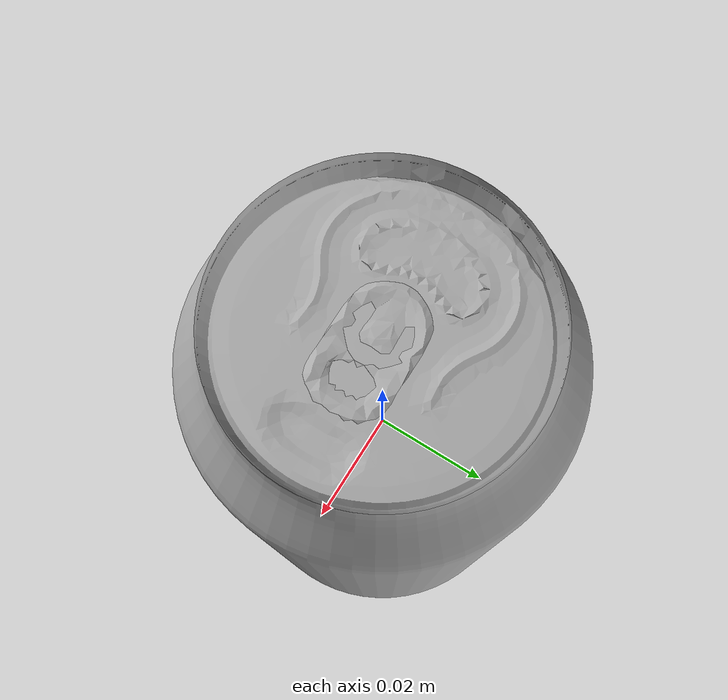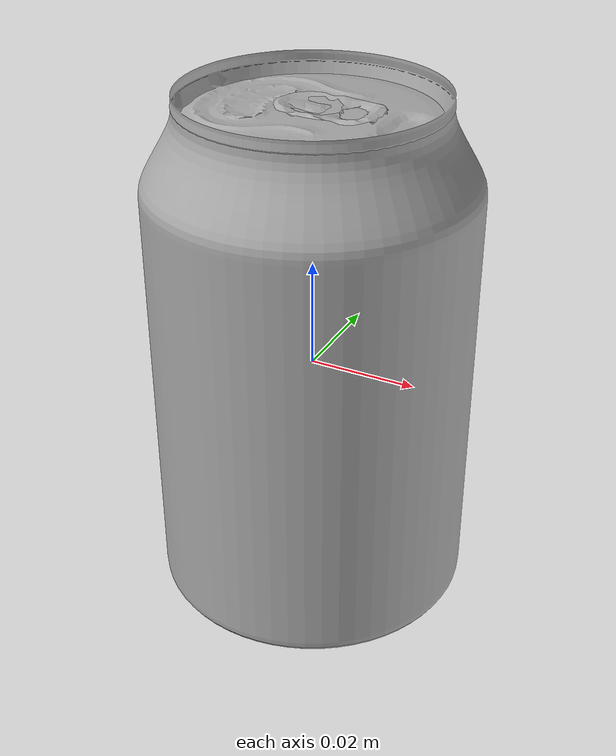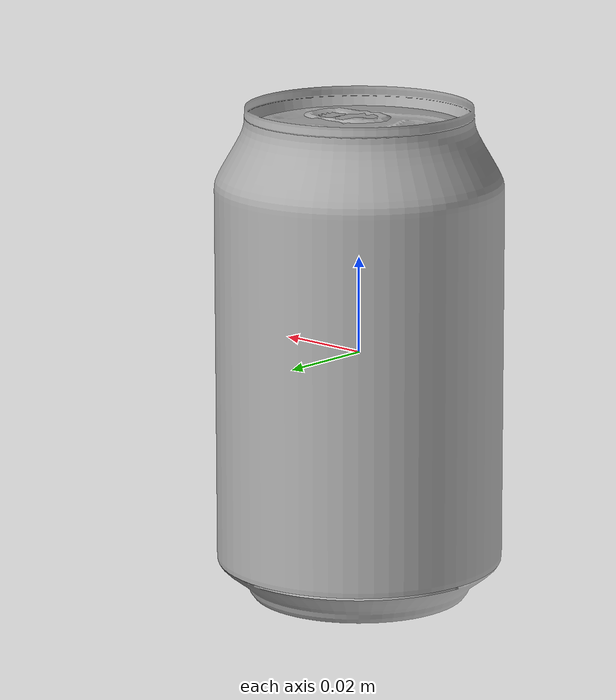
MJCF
<?xml version="1.0" ?>
<mujoco model="coke_can">
	<compiler meshdir="coke_can/meshes" texturedir="coke_can/textures" angle="radian" autolimits="true" balanceinertia="true" boundmass="0.000001" boundinertia="0.000001"/>
	<default>
		<default class="visual">
			<geom contype="0" conaffinity="0"/>
		</default>
		<default class="collision">
			<geom rgba="1.0 0.0 0.0 0.0"/>
		</default>
	</default>
	<asset>
		<mesh name="CokeCanSnapLids" file="stl/CokeCanSnapLids.stl" scale="1.0 1.0 1.0"/>
		<mesh name="CokeCanSnapLids_001" file="stl/CokeCanSnapLids_001.stl" scale="1.0 1.0 1.0"/>
		<mesh name="CokeCanSnapLids_002" file="stl/CokeCanSnapLids_002.stl" scale="1.0 1.0 1.0"/>
		<mesh name="CokeCanSnapLids_003" file="stl/CokeCanSnapLids_003.stl" scale="1.0 1.0 1.0"/>
		<mesh name="CokeCanSnapLids_004" file="stl/CokeCanSnapLids_004.stl" scale="1.0 1.0 1.0"/>
		<mesh name="CokeCanSnapLids_005" file="stl/CokeCanSnapLids_005.stl" scale="1.0 1.0 1.0"/>
		<mesh name="CokeCanSnapLids_006" file="stl/CokeCanSnapLids_006.stl" scale="1.0 1.0 1.0"/>
		<mesh name="CokeCanSnapLids_007" file="stl/CokeCanSnapLids_007.stl" scale="1.0 1.0 1.0"/>
		<mesh name="CokeCanSnapLids_008" file="stl/CokeCanSnapLids_008.stl" scale="1.0 1.0 1.0"/>
		<mesh name="CokeCanSnapLids_009" file="stl/CokeCanSnapLids_009.stl" scale="1.0 1.0 1.0"/>
		<mesh name="CokeCanSnapLids_010" file="stl/CokeCanSnapLids_010.stl" scale="1.0 1.0 1.0"/>
		<mesh name="CokeCanSnapLids_011" file="stl/CokeCanSnapLids_011.stl" scale="1.0 1.0 1.0"/>
		<mesh name="CokeCanSnapLids_012" file="stl/CokeCanSnapLids_012.stl" scale="1.0 1.0 1.0"/>
		<mesh name="CokeCanSnapLids_013" file="stl/CokeCanSnapLids_013.stl" scale="1.0 1.0 1.0"/>
		<mesh name="CokeCanSnapLids_014" file="stl/CokeCanSnapLids_014.stl" scale="1.0 1.0 1.0"/>
		<mesh name="CokeCanSnapLids_015" file="stl/CokeCanSnapLids_015.stl" scale="1.0 1.0 1.0"/>
		<mesh name="CokeCanSnapLids_016" file="stl/CokeCanSnapLids_016.stl" scale="1.0 1.0 1.0"/>
		<mesh name="CokeCanSnapLids_017" file="stl/CokeCanSnapLids_017.stl" scale="1.0 1.0 1.0"/>
		<mesh name="CokeCanSnapLids_018" file="stl/CokeCanSnapLids_018.stl" scale="1.0 1.0 1.0"/>
		<mesh name="CokeCanSnapLids_019" file="stl/CokeCanSnapLids_019.stl" scale="1.0 1.0 1.0"/>
		<mesh name="CokeCanSnapLids_020" file="stl/CokeCanSnapLids_020.stl" scale="1.0 1.0 1.0"/>
		<mesh name="CokeCanSnapLids_021" file="stl/CokeCanSnapLids_021.stl" scale="1.0 1.0 1.0"/>
		<mesh name="CokeCanSnapLids_022" file="stl/CokeCanSnapLids_022.stl" scale="1.0 1.0 1.0"/>
		<mesh name="CokeCanSnapLids_023" file="stl/CokeCanSnapLids_023.stl" scale="1.0 1.0 1.0"/>
		<mesh name="CokeCanSnapLids_024" file="stl/CokeCanSnapLids_024.stl" scale="1.0 1.0 1.0"/>
		<mesh name="CokeCanSnapLids_025" file="stl/CokeCanSnapLids_025.stl" scale="1.0 1.0 1.0"/>
		<mesh name="CokeCanSnapLids_026" file="stl/CokeCanSnapLids_026.stl" scale="1.0 1.0 1.0"/>
		<mesh name="CokeCanSnapLids_027" file="stl/CokeCanSnapLids_027.stl" scale="1.0 1.0 1.0"/>
		<mesh name="CokeCanSnapLids_028" file="stl/CokeCanSnapLids_028.stl" scale="1.0 1.0 1.0"/>
		<mesh name="CokeCanSnapLids_029" file="stl/CokeCanSnapLids_029.stl" scale="1.0 1.0 1.0"/>
		<mesh name="CokeCanSnapLids_030" file="stl/CokeCanSnapLids_030.stl" scale="1.0 1.0 1.0"/>
		<mesh name="CokeCanSnapLids_031" file="stl/CokeCanSnapLids_031.stl" scale="1.0 1.0 1.0"/>
		<mesh name="CokeCanSnapLids_032" file="stl/CokeCanSnapLids_032.stl" scale="1.0 1.0 1.0"/>
		<mesh name="CokeCanSnapLids_033" file="stl/CokeCanSnapLids_033.stl" scale="1.0 1.0 1.0"/>
		<mesh name="CokeCanSnapLids_034" file="stl/CokeCanSnapLids_034.stl" scale="1.0 1.0 1.0"/>
		<mesh name="CokeCanBottom" file="stl/CokeCanBottom.stl" scale="1.0 1.0 1.0"/>
		<mesh name="CokeCanBottom_001" file="stl/CokeCanBottom_001.stl" scale="1.0 1.0 1.0"/>
		<mesh name="CokeCanBottom_002" file="stl/CokeCanBottom_002.stl" scale="1.0 1.0 1.0"/>
		<mesh name="CokeCanBottom_003" file="stl/CokeCanBottom_003.stl" scale="1.0 1.0 1.0"/>
		<mesh name="CokeCanBottom_004" file="stl/CokeCanBottom_004.stl" scale="1.0 1.0 1.0"/>
		<mesh name="CokeCanBottom_005" file="stl/CokeCanBottom_005.stl" scale="1.0 1.0 1.0"/>
		<mesh name="CokeCanBottom_006" file="stl/CokeCanBottom_006.stl" scale="1.0 1.0 1.0"/>
		<mesh name="CokeCanBottom_007" file="stl/CokeCanBottom_007.stl" scale="1.0 1.0 1.0"/>
		<mesh name="CokeCanBottom_008" file="stl/CokeCanBottom_008.stl" scale="1.0 1.0 1.0"/>
		<mesh name="CokeCanBottom_009" file="stl/CokeCanBottom_009.stl" scale="1.0 1.0 1.0"/>
		<mesh name="CokeCanBottom_010" file="stl/CokeCanBottom_010.stl" scale="1.0 1.0 1.0"/>
		<mesh name="CokeCanBottom_011" file="stl/CokeCanBottom_011.stl" scale="1.0 1.0 1.0"/>
		<mesh name="CokeCanBottom_012" file="stl/CokeCanBottom_012.stl" scale="1.0 1.0 1.0"/>
		<mesh name="CokeCanBottom_013" file="stl/CokeCanBottom_013.stl" scale="1.0 1.0 1.0"/>
		<mesh name="CokeCanBottom_014" file="stl/CokeCanBottom_014.stl" scale="1.0 1.0 1.0"/>
		<mesh name="CokeCanBottom_015" file="stl/CokeCanBottom_015.stl" scale="1.0 1.0 1.0"/>
		<mesh name="CokeCanBottom_016" file="stl/CokeCanBottom_016.stl" scale="1.0 1.0 1.0"/>
		<mesh name="CokeCanBottom_017" file="stl/CokeCanBottom_017.stl" scale="1.0 1.0 1.0"/>
		<mesh name="CokeCanBottom_018" file="stl/CokeCanBottom_018.stl" scale="1.0 1.0 1.0"/>
		<mesh name="CokeCanBottom_019" file="stl/CokeCanBottom_019.stl" scale="1.0 1.0 1.0"/>
		<mesh name="CokeCanBottom_020" file="stl/CokeCanBottom_020.stl" scale="1.0 1.0 1.0"/>
		<mesh name="CokeCanBottom_021" file="stl/CokeCanBottom_021.stl" scale="1.0 1.0 1.0"/>
		<mesh name="CokeCanBottom_022" file="stl/CokeCanBottom_022.stl" scale="1.0 1.0 1.0"/>
		<mesh name="CokeCanBottom_023" file="stl/CokeCanBottom_023.stl" scale="1.0 1.0 1.0"/>
		<mesh name="CokeCanBottom_024" file="stl/CokeCanBottom_024.stl" scale="1.0 1.0 1.0"/>
		<mesh name="CokeCanBottom_025" file="stl/CokeCanBottom_025.stl" scale="1.0 1.0 1.0"/>
		<mesh name="CokeCanBottom_026" file="stl/CokeCanBottom_026.stl" scale="1.0 1.0 1.0"/>
		<mesh name="CokeCanBottom_027" file="stl/CokeCanBottom_027.stl" scale="1.0 1.0 1.0"/>
		<mesh name="CokeCanBottom_028" file="stl/CokeCanBottom_028.stl" scale="1.0 1.0 1.0"/>
		<mesh name="CokeCanBottom_029" file="stl/CokeCanBottom_029.stl" scale="1.0 1.0 1.0"/>
		<mesh name="CokeCanBottom_030" file="stl/CokeCanBottom_030.stl" scale="1.0 1.0 1.0"/>
		<mesh name="CokeCanBottom_031" file="stl/CokeCanBottom_031.stl" scale="1.0 1.0 1.0"/>
		<mesh name="CokeCanBottom_032" file="stl/CokeCanBottom_032.stl" scale="1.0 1.0 1.0"/>
		<mesh name="CokeCanBottom_033" file="stl/CokeCanBottom_033.stl" scale="1.0 1.0 1.0"/>
		<mesh name="CokeCanBottom_034" file="stl/CokeCanBottom_034.stl" scale="1.0 1.0 1.0"/>
		<mesh name="CokeCanBottom_035" file="stl/CokeCanBottom_035.stl" scale="1.0 1.0 1.0"/>
		<mesh name="CokeCanBottom_036" file="stl/CokeCanBottom_036.stl" scale="1.0 1.0 1.0"/>
		<mesh name="CokeCanBottom_037" file="stl/CokeCanBottom_037.stl" scale="1.0 1.0 1.0"/>
		<mesh name="CokeCanBottom_038" file="stl/CokeCanBottom_038.stl" scale="1.0 1.0 1.0"/>
		<mesh name="CokeCanBottom_039" file="stl/CokeCanBottom_039.stl" scale="1.0 1.0 1.0"/>
		<mesh name="CokeCanBottom_040" file="stl/CokeCanBottom_040.stl" scale="1.0 1.0 1.0"/>
		<mesh name="CokeCanBottom_041" file="stl/CokeCanBottom_041.stl" scale="1.0 1.0 1.0"/>
		<mesh name="CokeCanBottom_042" file="stl/CokeCanBottom_042.stl" scale="1.0 1.0 1.0"/>
		<mesh name="CokeCanBottom_043" file="stl/CokeCanBottom_043.stl" scale="1.0 1.0 1.0"/>
		<mesh name="CokeCanBottom_044" file="stl/CokeCanBottom_044.stl" scale="1.0 1.0 1.0"/>
		<mesh name="CokeCanBottom_045" file="stl/CokeCanBottom_045.stl" scale="1.0 1.0 1.0"/>
		<mesh name="CokeCanBottom_046" file="stl/CokeCanBottom_046.stl" scale="1.0 1.0 1.0"/>
		<mesh name="CokeCanBottom_047" file="stl/CokeCanBottom_047.stl" scale="1.0 1.0 1.0"/>
		<mesh name="CokeCanBottom_048" file="stl/CokeCanBottom_048.stl" scale="1.0 1.0 1.0"/>
		<mesh name="CokeCanBottom_049" file="stl/CokeCanBottom_049.stl" scale="1.0 1.0 1.0"/>
		<mesh name="CokeCanBottom_050" file="stl/CokeCanBottom_050.stl" scale="1.0 1.0 1.0"/>
		<mesh name="CokeCanBottom_051" file="stl/CokeCanBottom_051.stl" scale="1.0 1.0 1.0"/>
		<mesh name="CokeCanBottom_052" file="stl/CokeCanBottom_052.stl" scale="1.0 1.0 1.0"/>
		<mesh name="CokeCanBottom_053" file="stl/CokeCanBottom_053.stl" scale="1.0 1.0 1.0"/>
		<mesh name="CokeCanBottom_054" file="stl/CokeCanBottom_054.stl" scale="1.0 1.0 1.0"/>
		<mesh name="CokeCanBottom_055" file="stl/CokeCanBottom_055.stl" scale="1.0 1.0 1.0"/>
		<mesh name="CokeCanBottom_056" file="stl/CokeCanBottom_056.stl" scale="1.0 1.0 1.0"/>
		<mesh name="CokeCanBottom_057" file="stl/CokeCanBottom_057.stl" scale="1.0 1.0 1.0"/>
		<mesh name="CokeCanBottom_058" file="stl/CokeCanBottom_058.stl" scale="1.0 1.0 1.0"/>
		<mesh name="CokeCanBottom_059" file="stl/CokeCanBottom_059.stl" scale="1.0 1.0 1.0"/>
		<mesh name="CokeCanBottom_060" file="stl/CokeCanBottom_060.stl" scale="1.0 1.0 1.0"/>
		<mesh name="CokeCanBottom_061" file="stl/CokeCanBottom_061.stl" scale="1.0 1.0 1.0"/>
		<mesh name="CokeCanBottom_062" file="stl/CokeCanBottom_062.stl" scale="1.0 1.0 1.0"/>
		<mesh name="CokeCanBottom_063" file="stl/CokeCanBottom_063.stl" scale="1.0 1.0 1.0"/>
		<mesh name="CokeCanBottom_064" file="stl/CokeCanBottom_064.stl" scale="1.0 1.0 1.0"/>
		<mesh name="CokeCanBottom_065" file="stl/CokeCanBottom_065.stl" scale="1.0 1.0 1.0"/>
		<mesh name="CokeCanBottom_066" file="stl/CokeCanBottom_066.stl" scale="1.0 1.0 1.0"/>
		<mesh name="CokeCanBottom_067" file="stl/CokeCanBottom_067.stl" scale="1.0 1.0 1.0"/>
		<mesh name="CokeCanBottom_068" file="stl/CokeCanBottom_068.stl" scale="1.0 1.0 1.0"/>
		<mesh name="CokeCanBottom_069" file="stl/CokeCanBottom_069.stl" scale="1.0 1.0 1.0"/>
		<mesh name="CokeCanBottom_070" file="stl/CokeCanBottom_070.stl" scale="1.0 1.0 1.0"/>
		<mesh name="CokeCanBottom_071" file="stl/CokeCanBottom_071.stl" scale="1.0 1.0 1.0"/>
		<mesh name="CokeCanBottom_072" file="stl/CokeCanBottom_072.stl" scale="1.0 1.0 1.0"/>
		<mesh name="CokeCanBottom_073" file="stl/CokeCanBottom_073.stl" scale="1.0 1.0 1.0"/>
		<mesh name="CokeCanBottom_074" file="stl/CokeCanBottom_074.stl" scale="1.0 1.0 1.0"/>
		<mesh name="CokeCanBottom_075" file="stl/CokeCanBottom_075.stl" scale="1.0 1.0 1.0"/>
		<mesh name="CokeCanBottom_076" file="stl/CokeCanBottom_076.stl" scale="1.0 1.0 1.0"/>
		<mesh name="CokeCanBottom_077" file="stl/CokeCanBottom_077.stl" scale="1.0 1.0 1.0"/>
		<mesh name="CokeCanBottom_078" file="stl/CokeCanBottom_078.stl" scale="1.0 1.0 1.0"/>
		<mesh name="CokeCanPullRing" file="stl/CokeCanPullRing.stl" scale="1.0 1.0 1.0"/>
		<mesh name="CokeCanPullRing_001" file="stl/CokeCanPullRing_001.stl" scale="1.0 1.0 1.0"/>
		<mesh name="CokeCanPullRing_002" file="stl/CokeCanPullRing_002.stl" scale="1.0 1.0 1.0"/>
		<mesh name="CokeCanPullRing_003" file="stl/CokeCanPullRing_003.stl" scale="1.0 1.0 1.0"/>
		<mesh name="CokeCanPullRing_004" file="stl/CokeCanPullRing_004.stl" scale="1.0 1.0 1.0"/>
		<mesh name="CokeCanPullRing_005" file="stl/CokeCanPullRing_005.stl" scale="1.0 1.0 1.0"/>
		<mesh name="CokeCanPullRing_006" file="stl/CokeCanPullRing_006.stl" scale="1.0 1.0 1.0"/>
		<mesh name="CokeCanPullRing_007" file="stl/CokeCanPullRing_007.stl" scale="1.0 1.0 1.0"/>
		<mesh name="CokeCanPullRing_008" file="stl/CokeCanPullRing_008.stl" scale="1.0 1.0 1.0"/>
		<mesh name="CokeCanPullRing_009" file="stl/CokeCanPullRing_009.stl" scale="1.0 1.0 1.0"/>
		<mesh name="CokeCanPullRing_010" file="stl/CokeCanPullRing_010.stl" scale="1.0 1.0 1.0"/>
		<mesh name="CokeCanPullRing_011" file="stl/CokeCanPullRing_011.stl" scale="1.0 1.0 1.0"/>
		<mesh name="CokeCanPullRing_012" file="stl/CokeCanPullRing_012.stl" scale="1.0 1.0 1.0"/>
		<mesh name="CokeCanPullRing_013" file="stl/CokeCanPullRing_013.stl" scale="1.0 1.0 1.0"/>
		<mesh name="CokeCanPullRing_014" file="stl/CokeCanPullRing_014.stl" scale="1.0 1.0 1.0"/>
		<mesh name="CokeCanPullRing_015" file="stl/CokeCanPullRing_015.stl" scale="1.0 1.0 1.0"/>
		<mesh name="CokeCanPullRing_016" file="stl/CokeCanPullRing_016.stl" scale="1.0 1.0 1.0"/>
		<mesh name="CokeCanPullRing_017" file="stl/CokeCanPullRing_017.stl" scale="1.0 1.0 1.0"/>
		<mesh name="CokeCanPullRing_018" file="stl/CokeCanPullRing_018.stl" scale="1.0 1.0 1.0"/>
		<mesh name="CokeCanPullRing_019" file="stl/CokeCanPullRing_019.stl" scale="1.0 1.0 1.0"/>
		<mesh name="CokeCanPullRing_020" file="stl/CokeCanPullRing_020.stl" scale="1.0 1.0 1.0"/>
		<mesh name="CokeCanPullRing_021" file="stl/CokeCanPullRing_021.stl" scale="1.0 1.0 1.0"/>
		<mesh name="CokeCanPullRing_022" file="stl/CokeCanPullRing_022.stl" scale="1.0 1.0 1.0"/>
		<mesh name="CokeCanPullRing_023" file="stl/CokeCanPullRing_023.stl" scale="1.0 1.0 1.0"/>
		<mesh name="CokeCanPullRing_024" file="stl/CokeCanPullRing_024.stl" scale="1.0 1.0 1.0"/>
		<mesh name="CokeCanPullRing_025" file="stl/CokeCanPullRing_025.stl" scale="1.0 1.0 1.0"/>
		<mesh name="CokeCanPullRing_026" file="stl/CokeCanPullRing_026.stl" scale="1.0 1.0 1.0"/>
		<mesh name="CokeCanPullRing_027" file="stl/CokeCanPullRing_027.stl" scale="1.0 1.0 1.0"/>
		<mesh name="CokeCanPullRing_028" file="stl/CokeCanPullRing_028.stl" scale="1.0 1.0 1.0"/>
		<mesh name="CokeCanPullRing_029" file="stl/CokeCanPullRing_029.stl" scale="1.0 1.0 1.0"/>
		<mesh name="CokeCanPullRing_030" file="stl/CokeCanPullRing_030.stl" scale="1.0 1.0 1.0"/>
		<mesh name="CokeCanPullRing_031" file="stl/CokeCanPullRing_031.stl" scale="1.0 1.0 1.0"/>
		<mesh name="CokeCanPullRing_032" file="stl/CokeCanPullRing_032.stl" scale="1.0 1.0 1.0"/>
		<mesh name="CokeCanPullRing_033" file="stl/CokeCanPullRing_033.stl" scale="1.0 1.0 1.0"/>
		<mesh name="CokeCanPullRing_034" file="stl/CokeCanPullRing_034.stl" scale="1.0 1.0 1.0"/>
		<mesh name="CokeCanPullRing_035" file="stl/CokeCanPullRing_035.stl" scale="1.0 1.0 1.0"/>
		<mesh name="CokeCanPullRing_036" file="stl/CokeCanPullRing_036.stl" scale="1.0 1.0 1.0"/>
		<mesh name="CokeCanPullRing_037" file="stl/CokeCanPullRing_037.stl" scale="1.0 1.0 1.0"/>
		<mesh name="CokeCanTrademark" file="stl/CokeCanTrademark.stl" scale="1.0 1.0 1.0"/>
		<mesh name="CokeCanTrademark_001" file="stl/CokeCanTrademark_001.stl" scale="1.0 1.0 1.0"/>
		<mesh name="CokeCanTrademark_002" file="stl/CokeCanTrademark_002.stl" scale="1.0 1.0 1.0"/>
		<mesh name="CokeCanTrademark_003" file="stl/CokeCanTrademark_003.stl" scale="1.0 1.0 1.0"/>
		<mesh name="CokeCanTrademark_004" file="stl/CokeCanTrademark_004.stl" scale="1.0 1.0 1.0"/>
		<mesh name="CokeCanTrademark_005" file="stl/CokeCanTrademark_005.stl" scale="1.0 1.0 1.0"/>
		<mesh name="CokeCanTrademark_006" file="stl/CokeCanTrademark_006.stl" scale="1.0 1.0 1.0"/>
		<mesh name="CokeCanTrademark_007" file="stl/CokeCanTrademark_007.stl" scale="1.0 1.0 1.0"/>
		<mesh name="CokeCanTrademark_008" file="stl/CokeCanTrademark_008.stl" scale="1.0 1.0 1.0"/>
		<mesh name="CokeCanTrademark_009" file="stl/CokeCanTrademark_009.stl" scale="1.0 1.0 1.0"/>
		<mesh name="CokeCanTrademark_010" file="stl/CokeCanTrademark_010.stl" scale="1.0 1.0 1.0"/>
		<mesh name="CokeCanTrademark_011" file="stl/CokeCanTrademark_011.stl" scale="1.0 1.0 1.0"/>
		<mesh name="CokeCanTrademark_012" file="stl/CokeCanTrademark_012.stl" scale="1.0 1.0 1.0"/>
		<mesh name="CokeCanTrademark_013" file="stl/CokeCanTrademark_013.stl" scale="1.0 1.0 1.0"/>
		<mesh name="CokeCanTrademark_014" file="stl/CokeCanTrademark_014.stl" scale="1.0 1.0 1.0"/>
		<mesh name="CokeCanTrademark_015" file="stl/CokeCanTrademark_015.stl" scale="1.0 1.0 1.0"/>
		<mesh name="CokeCanTrademark_016" file="stl/CokeCanTrademark_016.stl" scale="1.0 1.0 1.0"/>
		<mesh name="CokeCanTrademark_017" file="stl/CokeCanTrademark_017.stl" scale="1.0 1.0 1.0"/>
		<mesh name="CokeCanTrademark_018" file="stl/CokeCanTrademark_018.stl" scale="1.0 1.0 1.0"/>
		<mesh name="CokeCanTrademark_019" file="stl/CokeCanTrademark_019.stl" scale="1.0 1.0 1.0"/>
		<mesh name="CokeCanTrademark_020" file="stl/CokeCanTrademark_020.stl" scale="1.0 1.0 1.0"/>
		<mesh name="CokeCanTrademark_021" file="stl/CokeCanTrademark_021.stl" scale="1.0 1.0 1.0"/>
		<mesh name="CokeCanTrademark_022" file="stl/CokeCanTrademark_022.stl" scale="1.0 1.0 1.0"/>
		<mesh name="CokeCanTrademark_023" file="stl/CokeCanTrademark_023.stl" scale="1.0 1.0 1.0"/>
		<mesh name="CokeCanTrademark_024" file="stl/CokeCanTrademark_024.stl" scale="1.0 1.0 1.0"/>
		<mesh name="CokeCanTrademark_025" file="stl/CokeCanTrademark_025.stl" scale="1.0 1.0 1.0"/>
		<mesh name="CokeCanTrademark_026" file="stl/CokeCanTrademark_026.stl" scale="1.0 1.0 1.0"/>
		<mesh name="CokeCanTrademark_027" file="stl/CokeCanTrademark_027.stl" scale="1.0 1.0 1.0"/>
		<mesh name="CokeCanTrademark_028" file="stl/CokeCanTrademark_028.stl" scale="1.0 1.0 1.0"/>
		<material name="M_CokeCanSnapLids" rgba="0.6744999885559082 0.6744999885559082 0.6744999885559082 1.0" emission="0.0"/>
		<material name="M_CokeCanBottom" rgba="0.6744999885559082 0.6744999885559082 0.6744999885559082 1.0" emission="0.0"/>
		<material name="M_CokeCanPullRing" rgba="0.6744999885559082 0.6744999885559082 0.6744999885559082 1.0" emission="0.0"/>
		<material name="M_CokeCanTrademark" rgba="0.6744999885559082 0.6744999885559082 0.6744999885559082 1.0" emission="0.0"/>
	</asset>
	<worldbody>
		<body name="coke_can" pos="0.0 0.0 0.0" quat="1.0 0.0 0.0 0.0">
			<body name="coke_can_snap_lids" pos="0.0 0.0 0.0" quat="1.0 0.0 0.0 0.0">
				<inertial mass="0.0007786403875797987" pos="-5.552585935220122e-05 4.7487924348388333e-07 0.04825707897543907" quat="0.49952661991119385 0.5011956095695496 0.4987998306751251 -0.5004746317863464" diaginertia="2.893337693876674e-07 1.958926759471069e-06 1.959535666173906e-06"/>
				<geom name="CokeCanSnapLids" type="mesh" pos="0.0 0.0 0.0" quat="1.0 0.0 0.0 0.0" mesh="CokeCanSnapLids" material="M_CokeCanSnapLids" class="visual"/>
				<geom name="CokeCanSnapLids_001" type="mesh" pos="0.0 0.0 0.0" quat="1.0 0.0 0.0 0.0" mesh="CokeCanSnapLids_001" class="collision"/>
				<geom name="CokeCanSnapLids_002" type="mesh" pos="0.0 0.0 0.0" quat="1.0 0.0 0.0 0.0" mesh="CokeCanSnapLids_002" class="collision"/>
				<geom name="CokeCanSnapLids_003" type="mesh" pos="0.0 0.0 0.0" quat="1.0 0.0 0.0 0.0" mesh="CokeCanSnapLids_003" class="collision"/>
				<geom name="CokeCanSnapLids_004" type="mesh" pos="0.0 0.0 0.0" quat="1.0 0.0 0.0 0.0" mesh="CokeCanSnapLids_004" class="collision"/>
				<geom name="CokeCanSnapLids_005" type="mesh" pos="0.0 0.0 0.0" quat="1.0 0.0 0.0 0.0" mesh="CokeCanSnapLids_005" class="collision"/>
				<geom name="CokeCanSnapLids_006" type="mesh" pos="0.0 0.0 0.0" quat="1.0 0.0 0.0 0.0" mesh="CokeCanSnapLids_006" class="collision"/>
				<geom name="CokeCanSnapLids_007" type="mesh" pos="0.0 0.0 0.0" quat="1.0 0.0 0.0 0.0" mesh="CokeCanSnapLids_007" class="collision"/>
				<geom name="CokeCanSnapLids_008" type="mesh" pos="0.0 0.0 0.0" quat="1.0 0.0 0.0 0.0" mesh="CokeCanSnapLids_008" class="collision"/>
				<geom name="CokeCanSnapLids_009" type="mesh" pos="0.0 0.0 0.0" quat="1.0 0.0 0.0 0.0" mesh="CokeCanSnapLids_009" class="collision"/>
				<geom name="CokeCanSnapLids_010" type="mesh" pos="0.0 0.0 0.0" quat="1.0 0.0 0.0 0.0" mesh="CokeCanSnapLids_010" class="collision"/>
				<geom name="CokeCanSnapLids_011" type="mesh" pos="0.0 0.0 0.0" quat="1.0 0.0 0.0 0.0" mesh="CokeCanSnapLids_011" class="collision"/>
				<geom name="CokeCanSnapLids_012" type="mesh" pos="0.0 0.0 0.0" quat="1.0 0.0 0.0 0.0" mesh="CokeCanSnapLids_012" class="collision"/>
				<geom name="CokeCanSnapLids_013" type="mesh" pos="0.0 0.0 0.0" quat="1.0 0.0 0.0 0.0" mesh="CokeCanSnapLids_013" class="collision"/>
				<geom name="CokeCanSnapLids_014" type="mesh" pos="0.0 0.0 0.0" quat="1.0 0.0 0.0 0.0" mesh="CokeCanSnapLids_014" class="collision"/>
				<geom name="CokeCanSnapLids_015" type="mesh" pos="0.0 0.0 0.0" quat="1.0 0.0 0.0 0.0" mesh="CokeCanSnapLids_015" class="collision"/>
				<geom name="CokeCanSnapLids_016" type="mesh" pos="0.0 0.0 0.0" quat="1.0 0.0 0.0 0.0" mesh="CokeCanSnapLids_016" class="collision"/>
				<geom name="CokeCanSnapLids_017" type="mesh" pos="0.0 0.0 0.0" quat="1.0 0.0 0.0 0.0" mesh="CokeCanSnapLids_017" class="collision"/>
				<geom name="CokeCanSnapLids_018" type="mesh" pos="0.0 0.0 0.0" quat="1.0 0.0 0.0 0.0" mesh="CokeCanSnapLids_018" class="collision"/>
				<geom name="CokeCanSnapLids_019" type="mesh" pos="0.0 0.0 0.0" quat="1.0 0.0 0.0 0.0" mesh="CokeCanSnapLids_019" class="collision"/>
				<geom name="CokeCanSnapLids_020" type="mesh" pos="0.0 0.0 0.0" quat="1.0 0.0 0.0 0.0" mesh="CokeCanSnapLids_020" class="collision"/>
				<geom name="CokeCanSnapLids_021" type="mesh" pos="0.0 0.0 0.0" quat="1.0 0.0 0.0 0.0" mesh="CokeCanSnapLids_021" class="collision"/>
				<geom name="CokeCanSnapLids_022" type="mesh" pos="0.0 0.0 0.0" quat="1.0 0.0 0.0 0.0" mesh="CokeCanSnapLids_022" class="collision"/>
				<geom name="CokeCanSnapLids_023" type="mesh" pos="0.0 0.0 0.0" quat="1.0 0.0 0.0 0.0" mesh="CokeCanSnapLids_023" class="collision"/>
				<geom name="CokeCanSnapLids_024" type="mesh" pos="0.0 0.0 0.0" quat="1.0 0.0 0.0 0.0" mesh="CokeCanSnapLids_024" class="collision"/>
				<geom name="CokeCanSnapLids_025" type="mesh" pos="0.0 0.0 0.0" quat="1.0 0.0 0.0 0.0" mesh="CokeCanSnapLids_025" class="collision"/>
				<geom name="CokeCanSnapLids_026" type="mesh" pos="0.0 0.0 0.0" quat="1.0 0.0 0.0 0.0" mesh="CokeCanSnapLids_026" class="collision"/>
				<geom name="CokeCanSnapLids_027" type="mesh" pos="0.0 0.0 0.0" quat="1.0 0.0 0.0 0.0" mesh="CokeCanSnapLids_027" class="collision"/>
				<geom name="CokeCanSnapLids_028" type="mesh" pos="0.0 0.0 0.0" quat="1.0 0.0 0.0 0.0" mesh="CokeCanSnapLids_028" class="collision"/>
				<geom name="CokeCanSnapLids_029" type="mesh" pos="0.0 0.0 0.0" quat="1.0 0.0 0.0 0.0" mesh="CokeCanSnapLids_029" class="collision"/>
				<geom name="CokeCanSnapLids_030" type="mesh" pos="0.0 0.0 0.0" quat="1.0 0.0 0.0 0.0" mesh="CokeCanSnapLids_030" class="collision"/>
				<geom name="CokeCanSnapLids_031" type="mesh" pos="0.0 0.0 0.0" quat="1.0 0.0 0.0 0.0" mesh="CokeCanSnapLids_031" class="collision"/>
				<geom name="CokeCanSnapLids_032" type="mesh" pos="0.0 0.0 0.0" quat="1.0 0.0 0.0 0.0" mesh="CokeCanSnapLids_032" class="collision"/>
				<geom name="CokeCanSnapLids_033" type="mesh" pos="0.0 0.0 0.0" quat="1.0 0.0 0.0 0.0" mesh="CokeCanSnapLids_033" class="collision"/>
				<geom name="CokeCanSnapLids_034" type="mesh" pos="0.0 0.0 0.0" quat="1.0 0.0 0.0 0.0" mesh="CokeCanSnapLids_034" class="collision"/>
			</body>
			<body name="coke_can_pull_ring" pos="0.0 0.0 0.0" quat="1.0 0.0 0.0 0.0">
				<inertial mass="6.472300447057933e-05" pos="0.0027700657956302166 5.7589797819446176e-08 0.048945553600788116" quat="0.48551955819129944 0.4855087697505951 0.514083206653595 -0.5140724778175354" diaginertia="2.840848889462677e-09 1.5642727646536514e-07 1.5753661841699795e-07"/>
				<geom name="CokeCanPullRing" type="mesh" pos="0.0 0.0 0.0" quat="1.0 0.0 0.0 0.0" mesh="CokeCanPullRing" material="M_CokeCanPullRing" class="visual"/>
				<geom name="CokeCanPullRing_001" type="mesh" pos="0.0 0.0 0.0" quat="1.0 0.0 0.0 0.0" mesh="CokeCanPullRing_001" class="collision"/>
				<geom name="CokeCanPullRing_002" type="mesh" pos="0.0 0.0 0.0" quat="1.0 0.0 0.0 0.0" mesh="CokeCanPullRing_002" class="collision"/>
				<geom name="CokeCanPullRing_003" type="mesh" pos="0.0 0.0 0.0" quat="1.0 0.0 0.0 0.0" mesh="CokeCanPullRing_003" class="collision"/>
				<geom name="CokeCanPullRing_004" type="mesh" pos="0.0 0.0 0.0" quat="1.0 0.0 0.0 0.0" mesh="CokeCanPullRing_004" class="collision"/>
				<geom name="CokeCanPullRing_005" type="mesh" pos="0.0 0.0 0.0" quat="1.0 0.0 0.0 0.0" mesh="CokeCanPullRing_005" class="collision"/>
				<geom name="CokeCanPullRing_006" type="mesh" pos="0.0 0.0 0.0" quat="1.0 0.0 0.0 0.0" mesh="CokeCanPullRing_006" class="collision"/>
				<geom name="CokeCanPullRing_007" type="mesh" pos="0.0 0.0 0.0" quat="1.0 0.0 0.0 0.0" mesh="CokeCanPullRing_007" class="collision"/>
				<geom name="CokeCanPullRing_008" type="mesh" pos="0.0 0.0 0.0" quat="1.0 0.0 0.0 0.0" mesh="CokeCanPullRing_008" class="collision"/>
				<geom name="CokeCanPullRing_009" type="mesh" pos="0.0 0.0 0.0" quat="1.0 0.0 0.0 0.0" mesh="CokeCanPullRing_009" class="collision"/>
				<geom name="CokeCanPullRing_010" type="mesh" pos="0.0 0.0 0.0" quat="1.0 0.0 0.0 0.0" mesh="CokeCanPullRing_010" class="collision"/>
				<geom name="CokeCanPullRing_011" type="mesh" pos="0.0 0.0 0.0" quat="1.0 0.0 0.0 0.0" mesh="CokeCanPullRing_011" class="collision"/>
				<geom name="CokeCanPullRing_012" type="mesh" pos="0.0 0.0 0.0" quat="1.0 0.0 0.0 0.0" mesh="CokeCanPullRing_012" class="collision"/>
				<geom name="CokeCanPullRing_013" type="mesh" pos="0.0 0.0 0.0" quat="1.0 0.0 0.0 0.0" mesh="CokeCanPullRing_013" class="collision"/>
				<geom name="CokeCanPullRing_014" type="mesh" pos="0.0 0.0 0.0" quat="1.0 0.0 0.0 0.0" mesh="CokeCanPullRing_014" class="collision"/>
				<geom name="CokeCanPullRing_015" type="mesh" pos="0.0 0.0 0.0" quat="1.0 0.0 0.0 0.0" mesh="CokeCanPullRing_015" class="collision"/>
				<geom name="CokeCanPullRing_016" type="mesh" pos="0.0 0.0 0.0" quat="1.0 0.0 0.0 0.0" mesh="CokeCanPullRing_016" class="collision"/>
				<geom name="CokeCanPullRing_017" type="mesh" pos="0.0 0.0 0.0" quat="1.0 0.0 0.0 0.0" mesh="CokeCanPullRing_017" class="collision"/>
				<geom name="CokeCanPullRing_018" type="mesh" pos="0.0 0.0 0.0" quat="1.0 0.0 0.0 0.0" mesh="CokeCanPullRing_018" class="collision"/>
				<geom name="CokeCanPullRing_019" type="mesh" pos="0.0 0.0 0.0" quat="1.0 0.0 0.0 0.0" mesh="CokeCanPullRing_019" class="collision"/>
				<geom name="CokeCanPullRing_020" type="mesh" pos="0.0 0.0 0.0" quat="1.0 0.0 0.0 0.0" mesh="CokeCanPullRing_020" class="collision"/>
				<geom name="CokeCanPullRing_021" type="mesh" pos="0.0 0.0 0.0" quat="1.0 0.0 0.0 0.0" mesh="CokeCanPullRing_021" class="collision"/>
				<geom name="CokeCanPullRing_022" type="mesh" pos="0.0 0.0 0.0" quat="1.0 0.0 0.0 0.0" mesh="CokeCanPullRing_022" class="collision"/>
				<geom name="CokeCanPullRing_023" type="mesh" pos="0.0 0.0 0.0" quat="1.0 0.0 0.0 0.0" mesh="CokeCanPullRing_023" class="collision"/>
				<geom name="CokeCanPullRing_024" type="mesh" pos="0.0 0.0 0.0" quat="1.0 0.0 0.0 0.0" mesh="CokeCanPullRing_024" class="collision"/>
				<geom name="CokeCanPullRing_025" type="mesh" pos="0.0 0.0 0.0" quat="1.0 0.0 0.0 0.0" mesh="CokeCanPullRing_025" class="collision"/>
				<geom name="CokeCanPullRing_026" type="mesh" pos="0.0 0.0 0.0" quat="1.0 0.0 0.0 0.0" mesh="CokeCanPullRing_026" class="collision"/>
				<geom name="CokeCanPullRing_027" type="mesh" pos="0.0 0.0 0.0" quat="1.0 0.0 0.0 0.0" mesh="CokeCanPullRing_027" class="collision"/>
				<geom name="CokeCanPullRing_028" type="mesh" pos="0.0 0.0 0.0" quat="1.0 0.0 0.0 0.0" mesh="CokeCanPullRing_028" class="collision"/>
				<geom name="CokeCanPullRing_029" type="mesh" pos="0.0 0.0 0.0" quat="1.0 0.0 0.0 0.0" mesh="CokeCanPullRing_029" class="collision"/>
				<geom name="CokeCanPullRing_030" type="mesh" pos="0.0 0.0 0.0" quat="1.0 0.0 0.0 0.0" mesh="CokeCanPullRing_030" class="collision"/>
				<geom name="CokeCanPullRing_031" type="mesh" pos="0.0 0.0 0.0" quat="1.0 0.0 0.0 0.0" mesh="CokeCanPullRing_031" class="collision"/>
				<geom name="CokeCanPullRing_032" type="mesh" pos="0.0 0.0 0.0" quat="1.0 0.0 0.0 0.0" mesh="CokeCanPullRing_032" class="collision"/>
				<geom name="CokeCanPullRing_033" type="mesh" pos="0.0 0.0 0.0" quat="1.0 0.0 0.0 0.0" mesh="CokeCanPullRing_033" class="collision"/>
				<geom name="CokeCanPullRing_034" type="mesh" pos="0.0 0.0 0.0" quat="1.0 0.0 0.0 0.0" mesh="CokeCanPullRing_034" class="collision"/>
				<geom name="CokeCanPullRing_035" type="mesh" pos="0.0 0.0 0.0" quat="1.0 0.0 0.0 0.0" mesh="CokeCanPullRing_035" class="collision"/>
				<geom name="CokeCanPullRing_036" type="mesh" pos="0.0 0.0 0.0" quat="1.0 0.0 0.0 0.0" mesh="CokeCanPullRing_036" class="collision"/>
				<geom name="CokeCanPullRing_037" type="mesh" pos="0.0 0.0 0.0" quat="1.0 0.0 0.0 0.0" mesh="CokeCanPullRing_037" class="collision"/>
			</body>
			<body name="coke_can_bottom" pos="0.0 0.0 0.0" quat="1.0 0.0 0.0 0.0">
				<inertial mass="0.0010213014902547002" pos="4.945118234900292e-07 -2.1482298606656514e-08 -0.04641607403755188" quat="-0.049327265471220016 0.7053802609443665 0.049328215420246124 0.7053880095481873" diaginertia="4.580786878705112e-07 2.4387959456362296e-06 2.438797764625633e-06"/>
				<geom name="CokeCanBottom" type="mesh" pos="0.0 0.0 0.0" quat="1.0 0.0 0.0 0.0" mesh="CokeCanBottom" material="M_CokeCanBottom" class="visual"/>
				<geom name="CokeCanBottom_001" type="mesh" pos="0.0 0.0 0.0" quat="1.0 0.0 0.0 0.0" mesh="CokeCanBottom_001" class="collision"/>
				<geom name="CokeCanBottom_002" type="mesh" pos="0.0 0.0 0.0" quat="1.0 0.0 0.0 0.0" mesh="CokeCanBottom_002" class="collision"/>
				<geom name="CokeCanBottom_003" type="mesh" pos="0.0 0.0 0.0" quat="1.0 0.0 0.0 0.0" mesh="CokeCanBottom_003" class="collision"/>
				<geom name="CokeCanBottom_004" type="mesh" pos="0.0 0.0 0.0" quat="1.0 0.0 0.0 0.0" mesh="CokeCanBottom_004" class="collision"/>
				<geom name="CokeCanBottom_005" type="mesh" pos="0.0 0.0 0.0" quat="1.0 0.0 0.0 0.0" mesh="CokeCanBottom_005" class="collision"/>
				<geom name="CokeCanBottom_006" type="mesh" pos="0.0 0.0 0.0" quat="1.0 0.0 0.0 0.0" mesh="CokeCanBottom_006" class="collision"/>
				<geom name="CokeCanBottom_007" type="mesh" pos="0.0 0.0 0.0" quat="1.0 0.0 0.0 0.0" mesh="CokeCanBottom_007" class="collision"/>
				<geom name="CokeCanBottom_008" type="mesh" pos="0.0 0.0 0.0" quat="1.0 0.0 0.0 0.0" mesh="CokeCanBottom_008" class="collision"/>
				<geom name="CokeCanBottom_009" type="mesh" pos="0.0 0.0 0.0" quat="1.0 0.0 0.0 0.0" mesh="CokeCanBottom_009" class="collision"/>
				<geom name="CokeCanBottom_010" type="mesh" pos="0.0 0.0 0.0" quat="1.0 0.0 0.0 0.0" mesh="CokeCanBottom_010" class="collision"/>
				<geom name="CokeCanBottom_011" type="mesh" pos="0.0 0.0 0.0" quat="1.0 0.0 0.0 0.0" mesh="CokeCanBottom_011" class="collision"/>
				<geom name="CokeCanBottom_012" type="mesh" pos="0.0 0.0 0.0" quat="1.0 0.0 0.0 0.0" mesh="CokeCanBottom_012" class="collision"/>
				<geom name="CokeCanBottom_013" type="mesh" pos="0.0 0.0 0.0" quat="1.0 0.0 0.0 0.0" mesh="CokeCanBottom_013" class="collision"/>
				<geom name="CokeCanBottom_014" type="mesh" pos="0.0 0.0 0.0" quat="1.0 0.0 0.0 0.0" mesh="CokeCanBottom_014" class="collision"/>
				<geom name="CokeCanBottom_015" type="mesh" pos="0.0 0.0 0.0" quat="1.0 0.0 0.0 0.0" mesh="CokeCanBottom_015" class="collision"/>
				<geom name="CokeCanBottom_016" type="mesh" pos="0.0 0.0 0.0" quat="1.0 0.0 0.0 0.0" mesh="CokeCanBottom_016" class="collision"/>
				<geom name="CokeCanBottom_017" type="mesh" pos="0.0 0.0 0.0" quat="1.0 0.0 0.0 0.0" mesh="CokeCanBottom_017" class="collision"/>
				<geom name="CokeCanBottom_018" type="mesh" pos="0.0 0.0 0.0" quat="1.0 0.0 0.0 0.0" mesh="CokeCanBottom_018" class="collision"/>
				<geom name="CokeCanBottom_019" type="mesh" pos="0.0 0.0 0.0" quat="1.0 0.0 0.0 0.0" mesh="CokeCanBottom_019" class="collision"/>
				<geom name="CokeCanBottom_020" type="mesh" pos="0.0 0.0 0.0" quat="1.0 0.0 0.0 0.0" mesh="CokeCanBottom_020" class="collision"/>
				<geom name="CokeCanBottom_021" type="mesh" pos="0.0 0.0 0.0" quat="1.0 0.0 0.0 0.0" mesh="CokeCanBottom_021" class="collision"/>
				<geom name="CokeCanBottom_022" type="mesh" pos="0.0 0.0 0.0" quat="1.0 0.0 0.0 0.0" mesh="CokeCanBottom_022" class="collision"/>
				<geom name="CokeCanBottom_023" type="mesh" pos="0.0 0.0 0.0" quat="1.0 0.0 0.0 0.0" mesh="CokeCanBottom_023" class="collision"/>
				<geom name="CokeCanBottom_024" type="mesh" pos="0.0 0.0 0.0" quat="1.0 0.0 0.0 0.0" mesh="CokeCanBottom_024" class="collision"/>
				<geom name="CokeCanBottom_025" type="mesh" pos="0.0 0.0 0.0" quat="1.0 0.0 0.0 0.0" mesh="CokeCanBottom_025" class="collision"/>
				<geom name="CokeCanBottom_026" type="mesh" pos="0.0 0.0 0.0" quat="1.0 0.0 0.0 0.0" mesh="CokeCanBottom_026" class="collision"/>
				<geom name="CokeCanBottom_027" type="mesh" pos="0.0 0.0 0.0" quat="1.0 0.0 0.0 0.0" mesh="CokeCanBottom_027" class="collision"/>
				<geom name="CokeCanBottom_028" type="mesh" pos="0.0 0.0 0.0" quat="1.0 0.0 0.0 0.0" mesh="CokeCanBottom_028" class="collision"/>
				<geom name="CokeCanBottom_029" type="mesh" pos="0.0 0.0 0.0" quat="1.0 0.0 0.0 0.0" mesh="CokeCanBottom_029" class="collision"/>
				<geom name="CokeCanBottom_030" type="mesh" pos="0.0 0.0 0.0" quat="1.0 0.0 0.0 0.0" mesh="CokeCanBottom_030" class="collision"/>
				<geom name="CokeCanBottom_031" type="mesh" pos="0.0 0.0 0.0" quat="1.0 0.0 0.0 0.0" mesh="CokeCanBottom_031" class="collision"/>
				<geom name="CokeCanBottom_032" type="mesh" pos="0.0 0.0 0.0" quat="1.0 0.0 0.0 0.0" mesh="CokeCanBottom_032" class="collision"/>
				<geom name="CokeCanBottom_033" type="mesh" pos="0.0 0.0 0.0" quat="1.0 0.0 0.0 0.0" mesh="CokeCanBottom_033" class="collision"/>
				<geom name="CokeCanBottom_034" type="mesh" pos="0.0 0.0 0.0" quat="1.0 0.0 0.0 0.0" mesh="CokeCanBottom_034" class="collision"/>
				<geom name="CokeCanBottom_035" type="mesh" pos="0.0 0.0 0.0" quat="1.0 0.0 0.0 0.0" mesh="CokeCanBottom_035" class="collision"/>
				<geom name="CokeCanBottom_036" type="mesh" pos="0.0 0.0 0.0" quat="1.0 0.0 0.0 0.0" mesh="CokeCanBottom_036" class="collision"/>
				<geom name="CokeCanBottom_037" type="mesh" pos="0.0 0.0 0.0" quat="1.0 0.0 0.0 0.0" mesh="CokeCanBottom_037" class="collision"/>
				<geom name="CokeCanBottom_038" type="mesh" pos="0.0 0.0 0.0" quat="1.0 0.0 0.0 0.0" mesh="CokeCanBottom_038" class="collision"/>
				<geom name="CokeCanBottom_039" type="mesh" pos="0.0 0.0 0.0" quat="1.0 0.0 0.0 0.0" mesh="CokeCanBottom_039" class="collision"/>
				<geom name="CokeCanBottom_040" type="mesh" pos="0.0 0.0 0.0" quat="1.0 0.0 0.0 0.0" mesh="CokeCanBottom_040" class="collision"/>
				<geom name="CokeCanBottom_041" type="mesh" pos="0.0 0.0 0.0" quat="1.0 0.0 0.0 0.0" mesh="CokeCanBottom_041" class="collision"/>
				<geom name="CokeCanBottom_042" type="mesh" pos="0.0 0.0 0.0" quat="1.0 0.0 0.0 0.0" mesh="CokeCanBottom_042" class="collision"/>
				<geom name="CokeCanBottom_043" type="mesh" pos="0.0 0.0 0.0" quat="1.0 0.0 0.0 0.0" mesh="CokeCanBottom_043" class="collision"/>
				<geom name="CokeCanBottom_044" type="mesh" pos="0.0 0.0 0.0" quat="1.0 0.0 0.0 0.0" mesh="CokeCanBottom_044" class="collision"/>
				<geom name="CokeCanBottom_045" type="mesh" pos="0.0 0.0 0.0" quat="1.0 0.0 0.0 0.0" mesh="CokeCanBottom_045" class="collision"/>
				<geom name="CokeCanBottom_046" type="mesh" pos="0.0 0.0 0.0" quat="1.0 0.0 0.0 0.0" mesh="CokeCanBottom_046" class="collision"/>
				<geom name="CokeCanBottom_047" type="mesh" pos="0.0 0.0 0.0" quat="1.0 0.0 0.0 0.0" mesh="CokeCanBottom_047" class="collision"/>
				<geom name="CokeCanBottom_048" type="mesh" pos="0.0 0.0 0.0" quat="1.0 0.0 0.0 0.0" mesh="CokeCanBottom_048" class="collision"/>
				<geom name="CokeCanBottom_049" type="mesh" pos="0.0 0.0 0.0" quat="1.0 0.0 0.0 0.0" mesh="CokeCanBottom_049" class="collision"/>
				<geom name="CokeCanBottom_050" type="mesh" pos="0.0 0.0 0.0" quat="1.0 0.0 0.0 0.0" mesh="CokeCanBottom_050" class="collision"/>
				<geom name="CokeCanBottom_051" type="mesh" pos="0.0 0.0 0.0" quat="1.0 0.0 0.0 0.0" mesh="CokeCanBottom_051" class="collision"/>
				<geom name="CokeCanBottom_052" type="mesh" pos="0.0 0.0 0.0" quat="1.0 0.0 0.0 0.0" mesh="CokeCanBottom_052" class="collision"/>
				<geom name="CokeCanBottom_053" type="mesh" pos="0.0 0.0 0.0" quat="1.0 0.0 0.0 0.0" mesh="CokeCanBottom_053" class="collision"/>
				<geom name="CokeCanBottom_054" type="mesh" pos="0.0 0.0 0.0" quat="1.0 0.0 0.0 0.0" mesh="CokeCanBottom_054" class="collision"/>
				<geom name="CokeCanBottom_055" type="mesh" pos="0.0 0.0 0.0" quat="1.0 0.0 0.0 0.0" mesh="CokeCanBottom_055" class="collision"/>
				<geom name="CokeCanBottom_056" type="mesh" pos="0.0 0.0 0.0" quat="1.0 0.0 0.0 0.0" mesh="CokeCanBottom_056" class="collision"/>
				<geom name="CokeCanBottom_057" type="mesh" pos="0.0 0.0 0.0" quat="1.0 0.0 0.0 0.0" mesh="CokeCanBottom_057" class="collision"/>
				<geom name="CokeCanBottom_058" type="mesh" pos="0.0 0.0 0.0" quat="1.0 0.0 0.0 0.0" mesh="CokeCanBottom_058" class="collision"/>
				<geom name="CokeCanBottom_059" type="mesh" pos="0.0 0.0 0.0" quat="1.0 0.0 0.0 0.0" mesh="CokeCanBottom_059" class="collision"/>
				<geom name="CokeCanBottom_060" type="mesh" pos="0.0 0.0 0.0" quat="1.0 0.0 0.0 0.0" mesh="CokeCanBottom_060" class="collision"/>
				<geom name="CokeCanBottom_061" type="mesh" pos="0.0 0.0 0.0" quat="1.0 0.0 0.0 0.0" mesh="CokeCanBottom_061" class="collision"/>
				<geom name="CokeCanBottom_062" type="mesh" pos="0.0 0.0 0.0" quat="1.0 0.0 0.0 0.0" mesh="CokeCanBottom_062" class="collision"/>
				<geom name="CokeCanBottom_063" type="mesh" pos="0.0 0.0 0.0" quat="1.0 0.0 0.0 0.0" mesh="CokeCanBottom_063" class="collision"/>
				<geom name="CokeCanBottom_064" type="mesh" pos="0.0 0.0 0.0" quat="1.0 0.0 0.0 0.0" mesh="CokeCanBottom_064" class="collision"/>
				<geom name="CokeCanBottom_065" type="mesh" pos="0.0 0.0 0.0" quat="1.0 0.0 0.0 0.0" mesh="CokeCanBottom_065" class="collision"/>
				<geom name="CokeCanBottom_066" type="mesh" pos="0.0 0.0 0.0" quat="1.0 0.0 0.0 0.0" mesh="CokeCanBottom_066" class="collision"/>
				<geom name="CokeCanBottom_067" type="mesh" pos="0.0 0.0 0.0" quat="1.0 0.0 0.0 0.0" mesh="CokeCanBottom_067" class="collision"/>
				<geom name="CokeCanBottom_068" type="mesh" pos="0.0 0.0 0.0" quat="1.0 0.0 0.0 0.0" mesh="CokeCanBottom_068" class="collision"/>
				<geom name="CokeCanBottom_069" type="mesh" pos="0.0 0.0 0.0" quat="1.0 0.0 0.0 0.0" mesh="CokeCanBottom_069" class="collision"/>
				<geom name="CokeCanBottom_070" type="mesh" pos="0.0 0.0 0.0" quat="1.0 0.0 0.0 0.0" mesh="CokeCanBottom_070" class="collision"/>
				<geom name="CokeCanBottom_071" type="mesh" pos="0.0 0.0 0.0" quat="1.0 0.0 0.0 0.0" mesh="CokeCanBottom_071" class="collision"/>
				<geom name="CokeCanBottom_072" type="mesh" pos="0.0 0.0 0.0" quat="1.0 0.0 0.0 0.0" mesh="CokeCanBottom_072" class="collision"/>
				<geom name="CokeCanBottom_073" type="mesh" pos="0.0 0.0 0.0" quat="1.0 0.0 0.0 0.0" mesh="CokeCanBottom_073" class="collision"/>
				<geom name="CokeCanBottom_074" type="mesh" pos="0.0 0.0 0.0" quat="1.0 0.0 0.0 0.0" mesh="CokeCanBottom_074" class="collision"/>
				<geom name="CokeCanBottom_075" type="mesh" pos="0.0 0.0 0.0" quat="1.0 0.0 0.0 0.0" mesh="CokeCanBottom_075" class="collision"/>
				<geom name="CokeCanBottom_076" type="mesh" pos="0.0 0.0 0.0" quat="1.0 0.0 0.0 0.0" mesh="CokeCanBottom_076" class="collision"/>
				<geom name="CokeCanBottom_077" type="mesh" pos="0.0 0.0 0.0" quat="1.0 0.0 0.0 0.0" mesh="CokeCanBottom_077" class="collision"/>
				<geom name="CokeCanBottom_078" type="mesh" pos="0.0 0.0 0.0" quat="1.0 0.0 0.0 0.0" mesh="CokeCanBottom_078" class="collision"/>
			</body>
			<body name="coke_can_trademark" pos="0.0 0.0 0.0" quat="1.0 0.0 0.0 0.0">
				<inertial mass="0.004100507590919733" pos="5.346417992768693e-07 4.568726978959603e-07 0.0027659458573907614" quat="0.35062509775161743 0.6140515208244324 -0.35062670707702637 0.6140550971031189" diaginertia="3.4531994970166124e-06 4.712011104857083e-06 4.71208613816998e-06"/>
				<geom name="CokeCanTrademark" type="mesh" pos="0.0 0.0 0.0" quat="1.0 0.0 0.0 0.0" mesh="CokeCanTrademark" material="M_CokeCanTrademark" class="visual"/>
				<geom name="CokeCanTrademark_001" type="mesh" pos="0.0 0.0 0.0" quat="1.0 0.0 0.0 0.0" mesh="CokeCanTrademark_001" class="collision"/>
				<geom name="CokeCanTrademark_002" type="mesh" pos="0.0 0.0 0.0" quat="1.0 0.0 0.0 0.0" mesh="CokeCanTrademark_002" class="collision"/>
				<geom name="CokeCanTrademark_003" type="mesh" pos="0.0 0.0 0.0" quat="1.0 0.0 0.0 0.0" mesh="CokeCanTrademark_003" class="collision"/>
				<geom name="CokeCanTrademark_004" type="mesh" pos="0.0 0.0 0.0" quat="1.0 0.0 0.0 0.0" mesh="CokeCanTrademark_004" class="collision"/>
				<geom name="CokeCanTrademark_005" type="mesh" pos="0.0 0.0 0.0" quat="1.0 0.0 0.0 0.0" mesh="CokeCanTrademark_005" class="collision"/>
				<geom name="CokeCanTrademark_006" type="mesh" pos="0.0 0.0 0.0" quat="1.0 0.0 0.0 0.0" mesh="CokeCanTrademark_006" class="collision"/>
				<geom name="CokeCanTrademark_007" type="mesh" pos="0.0 0.0 0.0" quat="1.0 0.0 0.0 0.0" mesh="CokeCanTrademark_007" class="collision"/>
				<geom name="CokeCanTrademark_008" type="mesh" pos="0.0 0.0 0.0" quat="1.0 0.0 0.0 0.0" mesh="CokeCanTrademark_008" class="collision"/>
				<geom name="CokeCanTrademark_009" type="mesh" pos="0.0 0.0 0.0" quat="1.0 0.0 0.0 0.0" mesh="CokeCanTrademark_009" class="collision"/>
				<geom name="CokeCanTrademark_010" type="mesh" pos="0.0 0.0 0.0" quat="1.0 0.0 0.0 0.0" mesh="CokeCanTrademark_010" class="collision"/>
				<geom name="CokeCanTrademark_011" type="mesh" pos="0.0 0.0 0.0" quat="1.0 0.0 0.0 0.0" mesh="CokeCanTrademark_011" class="collision"/>
				<geom name="CokeCanTrademark_012" type="mesh" pos="0.0 0.0 0.0" quat="1.0 0.0 0.0 0.0" mesh="CokeCanTrademark_012" class="collision"/>
				<geom name="CokeCanTrademark_013" type="mesh" pos="0.0 0.0 0.0" quat="1.0 0.0 0.0 0.0" mesh="CokeCanTrademark_013" class="collision"/>
				<geom name="CokeCanTrademark_014" type="mesh" pos="0.0 0.0 0.0" quat="1.0 0.0 0.0 0.0" mesh="CokeCanTrademark_014" class="collision"/>
				<geom name="CokeCanTrademark_015" type="mesh" pos="0.0 0.0 0.0" quat="1.0 0.0 0.0 0.0" mesh="CokeCanTrademark_015" class="collision"/>
				<geom name="CokeCanTrademark_016" type="mesh" pos="0.0 0.0 0.0" quat="1.0 0.0 0.0 0.0" mesh="CokeCanTrademark_016" class="collision"/>
				<geom name="CokeCanTrademark_017" type="mesh" pos="0.0 0.0 0.0" quat="1.0 0.0 0.0 0.0" mesh="CokeCanTrademark_017" class="collision"/>
				<geom name="CokeCanTrademark_018" type="mesh" pos="0.0 0.0 0.0" quat="1.0 0.0 0.0 0.0" mesh="CokeCanTrademark_018" class="collision"/>
				<geom name="CokeCanTrademark_019" type="mesh" pos="0.0 0.0 0.0" quat="1.0 0.0 0.0 0.0" mesh="CokeCanTrademark_019" class="collision"/>
				<geom name="CokeCanTrademark_020" type="mesh" pos="0.0 0.0 0.0" quat="1.0 0.0 0.0 0.0" mesh="CokeCanTrademark_020" class="collision"/>
				<geom name="CokeCanTrademark_021" type="mesh" pos="0.0 0.0 0.0" quat="1.0 0.0 0.0 0.0" mesh="CokeCanTrademark_021" class="collision"/>
				<geom name="CokeCanTrademark_022" type="mesh" pos="0.0 0.0 0.0" quat="1.0 0.0 0.0 0.0" mesh="CokeCanTrademark_022" class="collision"/>
				<geom name="CokeCanTrademark_023" type="mesh" pos="0.0 0.0 0.0" quat="1.0 0.0 0.0 0.0" mesh="CokeCanTrademark_023" class="collision"/>
				<geom name="CokeCanTrademark_024" type="mesh" pos="0.0 0.0 0.0" quat="1.0 0.0 0.0 0.0" mesh="CokeCanTrademark_024" class="collision"/>
				<geom name="CokeCanTrademark_025" type="mesh" pos="0.0 0.0 0.0" quat="1.0 0.0 0.0 0.0" mesh="CokeCanTrademark_025" class="collision"/>
				<geom name="CokeCanTrademark_026" type="mesh" pos="0.0 0.0 0.0" quat="1.0 0.0 0.0 0.0" mesh="CokeCanTrademark_026" class="collision"/>
				<geom name="CokeCanTrademark_027" type="mesh" pos="0.0 0.0 0.0" quat="1.0 0.0 0.0 0.0" mesh="CokeCanTrademark_027" class="collision"/>
				<geom name="CokeCanTrademark_028" type="mesh" pos="0.0 0.0 0.0" quat="1.0 0.0 0.0 0.0" mesh="CokeCanTrademark_028" class="collision"/>
			</body>
		</body>
	</worldbody>
	<equality/>
</mujoco>
